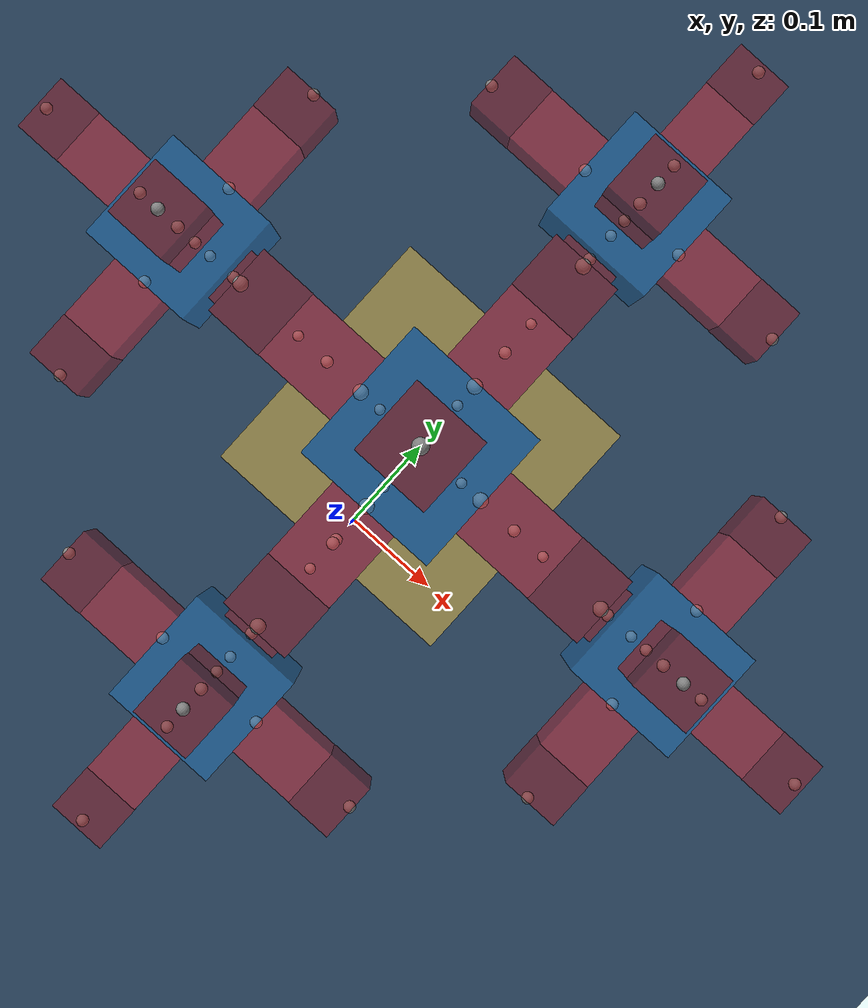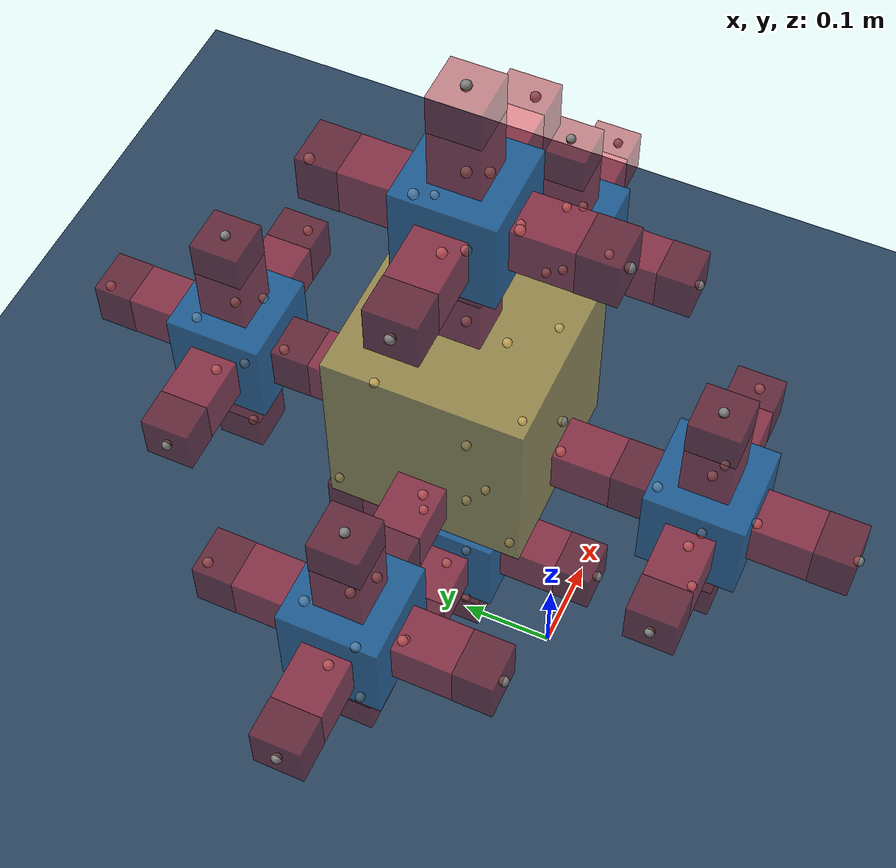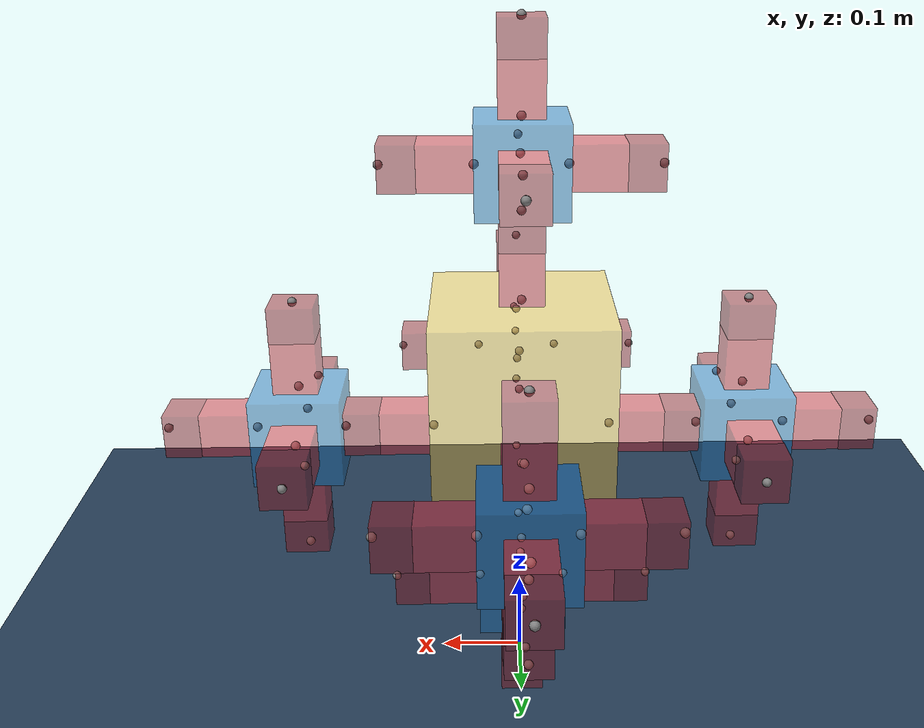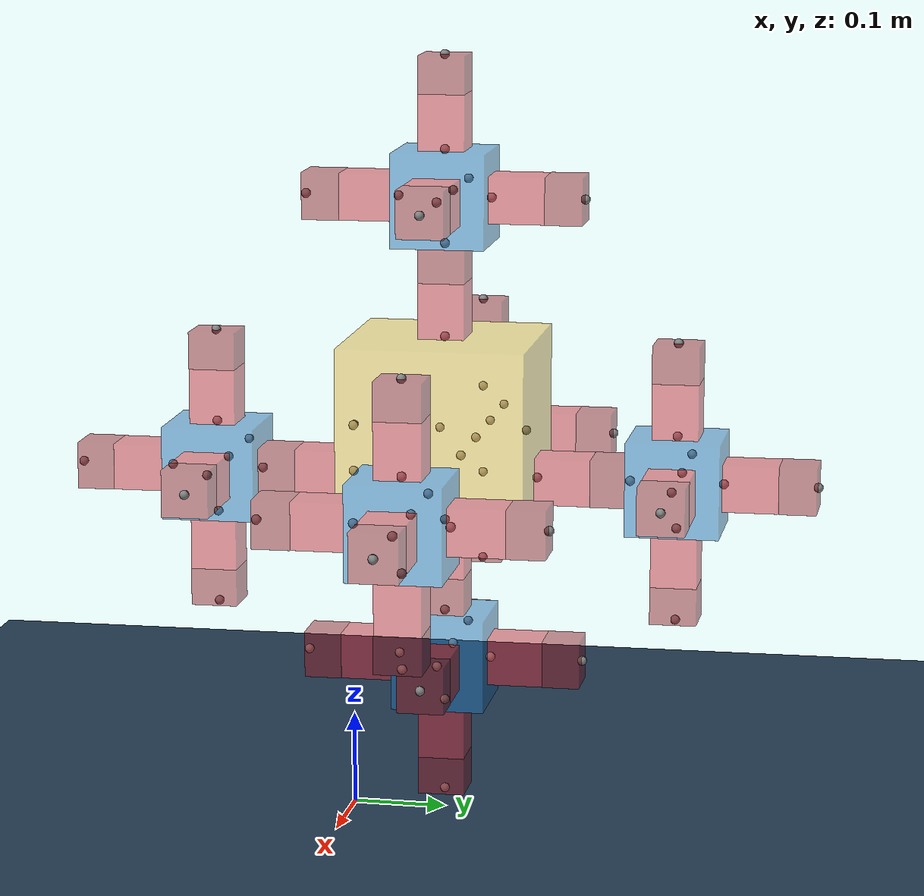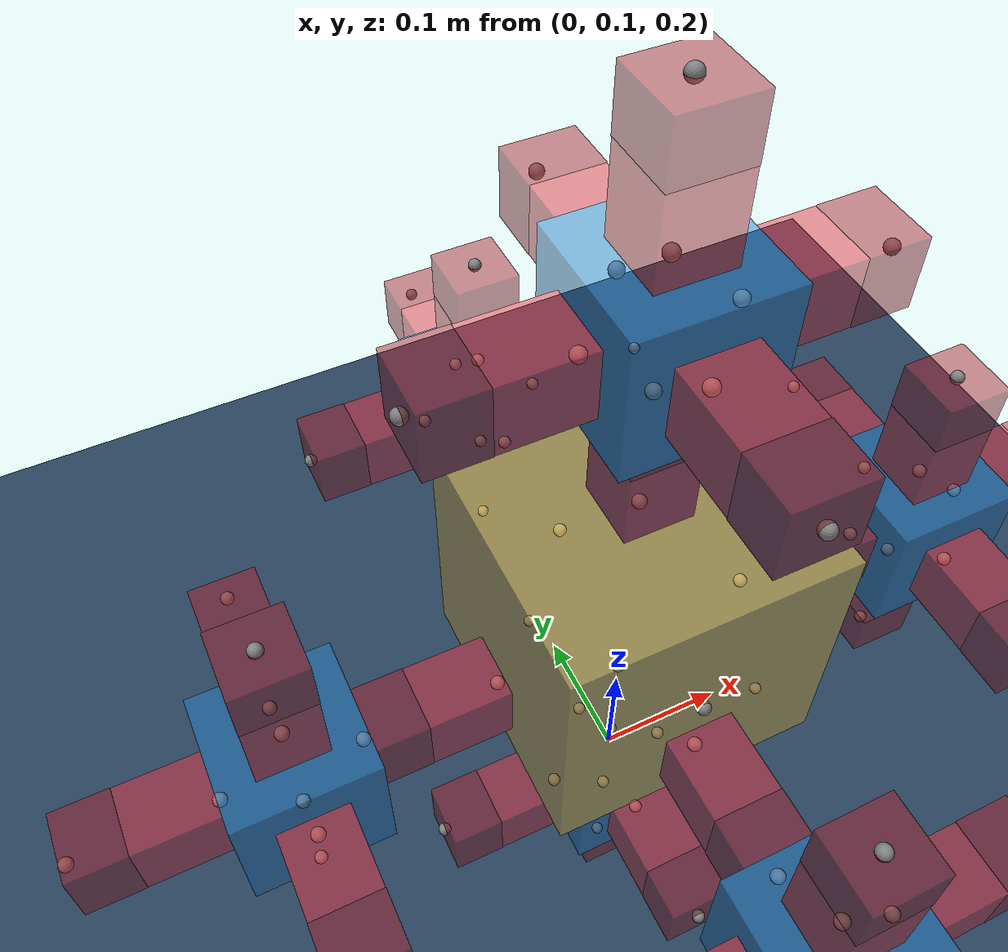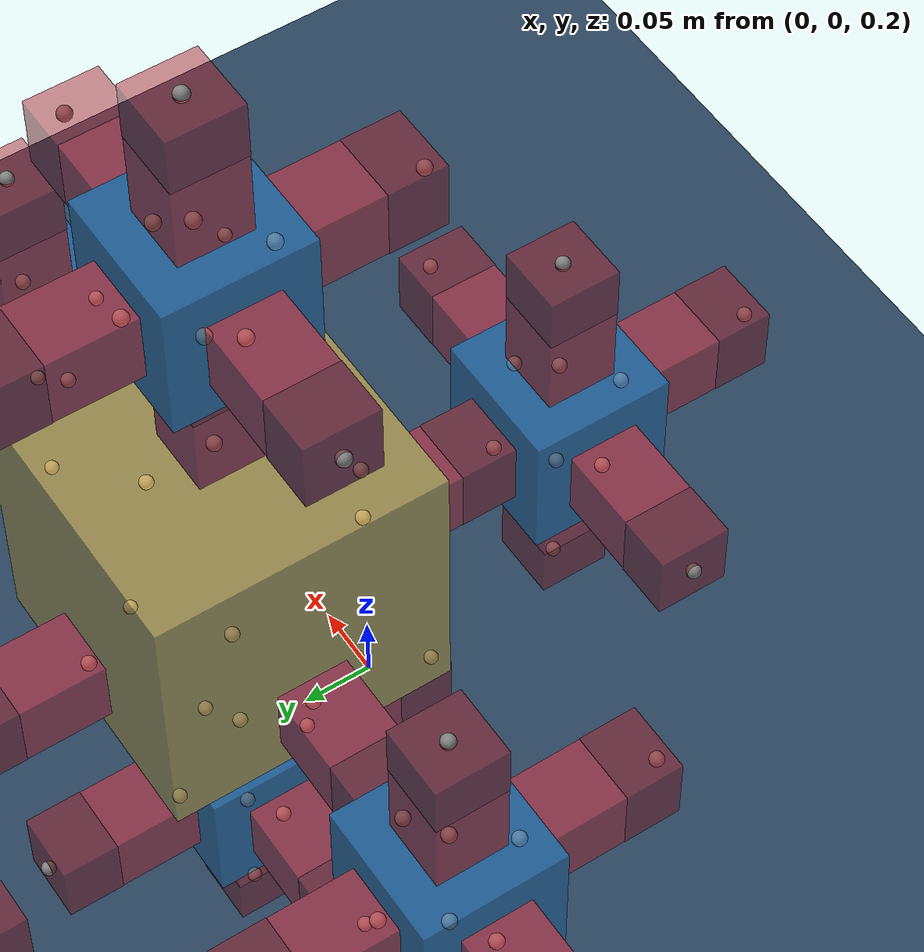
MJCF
<mujoco model="MuJoCo Model">
  <compiler angle="radian"/>

  <option integrator="implicitfast"/>

  <visual>
    <global offwidth="1280" offheight="960"/>
  </visual>

  <default>
    <default class="robot-main">
      <default class="robot-1-0-main"/>
      <default class="robot-2-0-main"/>
      <default class="robot-3-0-main"/>
      <default class="robot-4-2-main"/>
      <default class="robot-5-3-main"/>
      <default class="robot-6-4-main"/>
      <default class="robot-7-5-main"/>
      <default class="robot-8-1-main"/>
      <default class="robot-9-1-main"/>
      <default class="robot-10-0-main"/>
      <default class="robot-11-2-main"/>
      <default class="robot-12-3-main"/>
      <default class="robot-13-4-main"/>
      <default class="robot-14-5-main"/>
      <default class="robot-15-2-main"/>
      <default class="robot-16-2-main"/>
      <default class="robot-17-0-main"/>
      <default class="robot-18-2-main"/>
      <default class="robot-19-3-main"/>
      <default class="robot-20-4-main"/>
      <default class="robot-21-5-main"/>
      <default class="robot-22-3-main"/>
      <default class="robot-23-3-main"/>
      <default class="robot-24-0-main"/>
      <default class="robot-25-2-main"/>
      <default class="robot-26-3-main"/>
      <default class="robot-27-4-main"/>
      <default class="robot-28-5-main"/>
      <default class="robot-29-4-main"/>
      <default class="robot-30-4-main"/>
      <default class="robot-31-0-main"/>
      <default class="robot-32-2-main"/>
      <default class="robot-33-3-main"/>
      <default class="robot-34-4-main"/>
      <default class="robot-35-5-main"/>
      <default class="robot-36-5-main"/>
      <default class="robot-37-5-main"/>
      <default class="robot-38-0-main"/>
      <default class="robot-39-2-main"/>
      <default class="robot-40-3-main"/>
      <default class="robot-41-4-main"/>
      <default class="robot-42-5-main"/>
    </default>
  </default>

  <asset>
    <texture type="2d" colorspace="auto" name="grid" builtin="checker" rgb1="0.1 0.2 0.3" rgb2="0.2 0.3 0.4" width="600" height="600"/>
    <material name="grid" texture="grid" texuniform="true" texrepeat="3 3" reflectance="0.2"/>
  </asset>

  <worldbody>
    <geom name="floor" size="1 1 0.1" type="plane" material="grid"/>
    <site pos="0 0 0.42062"/>
    <light name="light" pos="0 0 1" dir="0 0 -1" castshadow="false"/>
    <body name="robot-world" pos="0 0 0.42062">
      <joint type="free"/>
      <body name="robot-core">
        <geom name="robot-core" size="0.1 0.1 0.1" pos="0 0.1 0" type="box" mass="1" rgba="0.992157 0.792157 0.25098 0.5"/>
        <site name="robot-core-front" pos="0 0.2 -0.05"/>
        <site name="robot-core-back" pos="0 0 -0.05" quat="0 0 0 1"/>
        <site name="robot-core-left" pos="-0.1 0.1 -0.05" quat="0.707107 0 0 0.707107"/>
        <site name="robot-core-right" pos="0.1 0.1 -0.05" quat="-0.707107 0 0 0.707107"/>
        <site name="robot-core-top" pos="0 0.1 0.1" quat="0.707107 0.707107 0 0"/>
        <site name="robot-core-bottom" pos="0 0.1 -0.1" quat="0 0 -0.707107 0.707107"/>
        <body name="robot-1-0-hinge" pos="0 0.2 -0.05">
          <body name="robot-1-0-stator" pos="0 0.03 0">
            <geom name="robot-1-0-stator" size="0.02475 0.0297 0.02475" type="box" mass="0.02" rgba="0.87451 0.160784 0.207843 0.5"/>
          </body>
          <body name="robot-1-0-rotor" pos="0 0.08 0">
            <joint name="robot-1-0-servo" pos="0 -0.02 0" axis="0 0 1"/>
            <geom name="robot-1-0-rotor" size="0.025 0.02 0.025" type="box" mass="0.04" rgba="0.627451 0.0941176 0.129412 0.5"/>
            <site name="robot-1-0-hinge-front" pos="0 0.02 0"/>
            <body name="robot-2-0-core" pos="0 0.02 0">
              <geom name="robot-2-0-core" size="0.05 0.05 0.05" pos="0 0.05 0" type="box" mass="0.055" rgba="0.109804 0.466667 0.764706 0.5"/>
              <site name="robot-2-0-core-front" pos="0 0.1 0"/>
              <site name="robot-2-0-core-left" pos="-0.05 0.05 0" quat="0.707107 0 0 0.707107"/>
              <site name="robot-2-0-core-right" pos="0.05 0.05 0" quat="-0.707107 0 0 0.707107"/>
              <site name="robot-2-0-core-top" pos="0 0.05 0.05" quat="0.707107 0.707107 0 0"/>
              <site name="robot-2-0-core-bottom" pos="0 0.05 -0.05" quat="0 0 -0.707107 0.707107"/>
              <body name="robot-3-0-hinge" pos="0 0.1 0">
                <body name="robot-3-0-stator" pos="0 0.03 0">
                  <geom name="robot-3-0-stator" size="0.02475 0.0297 0.02475" type="box" mass="0.02" rgba="0.87451 0.160784 0.207843 0.5"/>
                </body>
                <body name="robot-3-0-rotor" pos="0 0.08 0">
                  <joint name="robot-3-0-servo" pos="0 -0.02 0" axis="0 0 1"/>
                  <geom name="robot-3-0-rotor" size="0.025 0.02 0.025" type="box" mass="0.04" rgba="0.627451 0.0941176 0.129412 0.5"/>
                  <site name="robot-3-0-hinge-front" pos="0 0.02 0"/>
                </body>
              </body>
              <body name="robot-4-2-hinge" pos="0.05 0.05 0" quat="-0.707107 0 0 0.707107">
                <body name="robot-4-2-stator" pos="0 0.03 0">
                  <geom name="robot-4-2-stator" size="0.02475 0.0297 0.02475" type="box" mass="0.02" rgba="0.87451 0.160784 0.207843 0.5"/>
                </body>
                <body name="robot-4-2-rotor" pos="0 0.08 0">
                  <joint name="robot-4-2-servo" pos="0 -0.02 0" axis="0 0 1"/>
                  <geom name="robot-4-2-rotor" size="0.025 0.02 0.025" type="box" mass="0.04" rgba="0.627451 0.0941176 0.129412 0.5"/>
                  <site name="robot-4-2-hinge-front" pos="0 0.02 0"/>
                </body>
              </body>
              <body name="robot-5-3-hinge" pos="-0.05 0.05 0" quat="0.707107 0 0 0.707107">
                <body name="robot-5-3-stator" pos="0 0.03 0">
                  <geom name="robot-5-3-stator" size="0.02475 0.0297 0.02475" type="box" mass="0.02" rgba="0.87451 0.160784 0.207843 0.5"/>
                </body>
                <body name="robot-5-3-rotor" pos="0 0.08 0">
                  <joint name="robot-5-3-servo" pos="0 -0.02 0" axis="0 0 1"/>
                  <geom name="robot-5-3-rotor" size="0.025 0.02 0.025" type="box" mass="0.04" rgba="0.627451 0.0941176 0.129412 0.5"/>
                  <site name="robot-5-3-hinge-front" pos="0 0.02 0"/>
                </body>
              </body>
              <body name="robot-6-4-hinge" pos="0 0.05 0.05" quat="0.707107 0.707107 0 0">
                <body name="robot-6-4-stator" pos="0 0.03 0">
                  <geom name="robot-6-4-stator" size="0.02475 0.0297 0.02475" type="box" mass="0.02" rgba="0.87451 0.160784 0.207843 0.5"/>
                </body>
                <body name="robot-6-4-rotor" pos="0 0.08 0">
                  <joint name="robot-6-4-servo" pos="0 -0.02 0" axis="0 0 1"/>
                  <geom name="robot-6-4-rotor" size="0.025 0.02 0.025" type="box" mass="0.04" rgba="0.627451 0.0941176 0.129412 0.5"/>
                  <site name="robot-6-4-hinge-front" pos="0 0.02 0"/>
                </body>
              </body>
              <body name="robot-7-5-hinge" pos="0 0.05 -0.05" quat="0 0 -0.707107 0.707107">
                <body name="robot-7-5-stator" pos="0 0.03 0">
                  <geom name="robot-7-5-stator" size="0.02475 0.0297 0.02475" type="box" mass="0.02" rgba="0.87451 0.160784 0.207843 0.5"/>
                </body>
                <body name="robot-7-5-rotor" pos="0 0.08 0">
                  <joint name="robot-7-5-servo" pos="0 -0.02 0" axis="0 0 1"/>
                  <geom name="robot-7-5-rotor" size="0.025 0.02 0.025" type="box" mass="0.04" rgba="0.627451 0.0941176 0.129412 0.5"/>
                  <site name="robot-7-5-hinge-front" pos="0 0.02 0"/>
                </body>
              </body>
            </body>
          </body>
        </body>
        <body name="robot-8-1-hinge" pos="0 0 -0.05" quat="0 0 0 1">
          <body name="robot-8-1-stator" pos="0 0.03 0">
            <geom name="robot-8-1-stator" size="0.02475 0.0297 0.02475" type="box" mass="0.02" rgba="0.87451 0.160784 0.207843 0.5"/>
          </body>
          <body name="robot-8-1-rotor" pos="0 0.08 0">
            <joint name="robot-8-1-servo" pos="0 -0.02 0" axis="0 0 1"/>
            <geom name="robot-8-1-rotor" size="0.025 0.02 0.025" type="box" mass="0.04" rgba="0.627451 0.0941176 0.129412 0.5"/>
            <site name="robot-8-1-hinge-front" pos="0 0.02 0"/>
            <body name="robot-9-1-core" pos="0 0.02 0">
              <geom name="robot-9-1-core" size="0.05 0.05 0.05" pos="0 0.05 0" type="box" mass="0.055" rgba="0.109804 0.466667 0.764706 0.5"/>
              <site name="robot-9-1-core-front" pos="0 0.1 0"/>
              <site name="robot-9-1-core-left" pos="-0.05 0.05 0" quat="0.707107 0 0 0.707107"/>
              <site name="robot-9-1-core-right" pos="0.05 0.05 0" quat="-0.707107 0 0 0.707107"/>
              <site name="robot-9-1-core-top" pos="0 0.05 0.05" quat="0.707107 0.707107 0 0"/>
              <site name="robot-9-1-core-bottom" pos="0 0.05 -0.05" quat="0 0 -0.707107 0.707107"/>
              <body name="robot-10-0-hinge" pos="0 0.1 0">
                <body name="robot-10-0-stator" pos="0 0.03 0">
                  <geom name="robot-10-0-stator" size="0.02475 0.0297 0.02475" type="box" mass="0.02" rgba="0.87451 0.160784 0.207843 0.5"/>
                </body>
                <body name="robot-10-0-rotor" pos="0 0.08 0">
                  <joint name="robot-10-0-servo" pos="0 -0.02 0" axis="0 0 1"/>
                  <geom name="robot-10-0-rotor" size="0.025 0.02 0.025" type="box" mass="0.04" rgba="0.627451 0.0941176 0.129412 0.5"/>
                  <site name="robot-10-0-hinge-front" pos="0 0.02 0"/>
                </body>
              </body>
              <body name="robot-11-2-hinge" pos="0.05 0.05 0" quat="-0.707107 0 0 0.707107">
                <body name="robot-11-2-stator" pos="0 0.03 0">
                  <geom name="robot-11-2-stator" size="0.02475 0.0297 0.02475" type="box" mass="0.02" rgba="0.87451 0.160784 0.207843 0.5"/>
                </body>
                <body name="robot-11-2-rotor" pos="0 0.08 0">
                  <joint name="robot-11-2-servo" pos="0 -0.02 0" axis="0 0 1"/>
                  <geom name="robot-11-2-rotor" size="0.025 0.02 0.025" type="box" mass="0.04" rgba="0.627451 0.0941176 0.129412 0.5"/>
                  <site name="robot-11-2-hinge-front" pos="0 0.02 0"/>
                </body>
              </body>
              <body name="robot-12-3-hinge" pos="-0.05 0.05 0" quat="0.707107 0 0 0.707107">
                <body name="robot-12-3-stator" pos="0 0.03 0">
                  <geom name="robot-12-3-stator" size="0.02475 0.0297 0.02475" type="box" mass="0.02" rgba="0.87451 0.160784 0.207843 0.5"/>
                </body>
                <body name="robot-12-3-rotor" pos="0 0.08 0">
                  <joint name="robot-12-3-servo" pos="0 -0.02 0" axis="0 0 1"/>
                  <geom name="robot-12-3-rotor" size="0.025 0.02 0.025" type="box" mass="0.04" rgba="0.627451 0.0941176 0.129412 0.5"/>
                  <site name="robot-12-3-hinge-front" pos="0 0.02 0"/>
                </body>
              </body>
              <body name="robot-13-4-hinge" pos="0 0.05 0.05" quat="0.707107 0.707107 0 0">
                <body name="robot-13-4-stator" pos="0 0.03 0">
                  <geom name="robot-13-4-stator" size="0.02475 0.0297 0.02475" type="box" mass="0.02" rgba="0.87451 0.160784 0.207843 0.5"/>
                </body>
                <body name="robot-13-4-rotor" pos="0 0.08 0">
                  <joint name="robot-13-4-servo" pos="0 -0.02 0" axis="0 0 1"/>
                  <geom name="robot-13-4-rotor" size="0.025 0.02 0.025" type="box" mass="0.04" rgba="0.627451 0.0941176 0.129412 0.5"/>
                  <site name="robot-13-4-hinge-front" pos="0 0.02 0"/>
                </body>
              </body>
              <body name="robot-14-5-hinge" pos="0 0.05 -0.05" quat="0 0 -0.707107 0.707107">
                <body name="robot-14-5-stator" pos="0 0.03 0">
                  <geom name="robot-14-5-stator" size="0.02475 0.0297 0.02475" type="box" mass="0.02" rgba="0.87451 0.160784 0.207843 0.5"/>
                </body>
                <body name="robot-14-5-rotor" pos="0 0.08 0">
                  <joint name="robot-14-5-servo" pos="0 -0.02 0" axis="0 0 1"/>
                  <geom name="robot-14-5-rotor" size="0.025 0.02 0.025" type="box" mass="0.04" rgba="0.627451 0.0941176 0.129412 0.5"/>
                  <site name="robot-14-5-hinge-front" pos="0 0.02 0"/>
                </body>
              </body>
            </body>
          </body>
        </body>
        <body name="robot-15-2-hinge" pos="0.1 0.1 -0.05" quat="-0.707107 0 0 0.707107">
          <body name="robot-15-2-stator" pos="0 0.03 0">
            <geom name="robot-15-2-stator" size="0.02475 0.0297 0.02475" type="box" mass="0.02" rgba="0.87451 0.160784 0.207843 0.5"/>
          </body>
          <body name="robot-15-2-rotor" pos="0 0.08 0">
            <joint name="robot-15-2-servo" pos="0 -0.02 0" axis="0 0 1"/>
            <geom name="robot-15-2-rotor" size="0.025 0.02 0.025" type="box" mass="0.04" rgba="0.627451 0.0941176 0.129412 0.5"/>
            <site name="robot-15-2-hinge-front" pos="0 0.02 0"/>
            <body name="robot-16-2-core" pos="0 0.02 0">
              <geom name="robot-16-2-core" size="0.05 0.05 0.05" pos="0 0.05 0" type="box" mass="0.055" rgba="0.109804 0.466667 0.764706 0.5"/>
              <site name="robot-16-2-core-front" pos="0 0.1 0"/>
              <site name="robot-16-2-core-left" pos="-0.05 0.05 0" quat="0.707107 0 0 0.707107"/>
              <site name="robot-16-2-core-right" pos="0.05 0.05 0" quat="-0.707107 0 0 0.707107"/>
              <site name="robot-16-2-core-top" pos="0 0.05 0.05" quat="0.707107 0.707107 0 0"/>
              <site name="robot-16-2-core-bottom" pos="0 0.05 -0.05" quat="0 0 -0.707107 0.707107"/>
              <body name="robot-17-0-hinge" pos="0 0.1 0">
                <body name="robot-17-0-stator" pos="0 0.03 0">
                  <geom name="robot-17-0-stator" size="0.02475 0.0297 0.02475" type="box" mass="0.02" rgba="0.87451 0.160784 0.207843 0.5"/>
                </body>
                <body name="robot-17-0-rotor" pos="0 0.08 0">
                  <joint name="robot-17-0-servo" pos="0 -0.02 0" axis="0 0 1"/>
                  <geom name="robot-17-0-rotor" size="0.025 0.02 0.025" type="box" mass="0.04" rgba="0.627451 0.0941176 0.129412 0.5"/>
                  <site name="robot-17-0-hinge-front" pos="0 0.02 0"/>
                </body>
              </body>
              <body name="robot-18-2-hinge" pos="0.05 0.05 0" quat="-0.707107 0 0 0.707107">
                <body name="robot-18-2-stator" pos="0 0.03 0">
                  <geom name="robot-18-2-stator" size="0.02475 0.0297 0.02475" type="box" mass="0.02" rgba="0.87451 0.160784 0.207843 0.5"/>
                </body>
                <body name="robot-18-2-rotor" pos="0 0.08 0">
                  <joint name="robot-18-2-servo" pos="0 -0.02 0" axis="0 0 1"/>
                  <geom name="robot-18-2-rotor" size="0.025 0.02 0.025" type="box" mass="0.04" rgba="0.627451 0.0941176 0.129412 0.5"/>
                  <site name="robot-18-2-hinge-front" pos="0 0.02 0"/>
                </body>
              </body>
              <body name="robot-19-3-hinge" pos="-0.05 0.05 0" quat="0.707107 0 0 0.707107">
                <body name="robot-19-3-stator" pos="0 0.03 0">
                  <geom name="robot-19-3-stator" size="0.02475 0.0297 0.02475" type="box" mass="0.02" rgba="0.87451 0.160784 0.207843 0.5"/>
                </body>
                <body name="robot-19-3-rotor" pos="0 0.08 0">
                  <joint name="robot-19-3-servo" pos="0 -0.02 0" axis="0 0 1"/>
                  <geom name="robot-19-3-rotor" size="0.025 0.02 0.025" type="box" mass="0.04" rgba="0.627451 0.0941176 0.129412 0.5"/>
                  <site name="robot-19-3-hinge-front" pos="0 0.02 0"/>
                </body>
              </body>
              <body name="robot-20-4-hinge" pos="0 0.05 0.05" quat="0.707107 0.707107 0 0">
                <body name="robot-20-4-stator" pos="0 0.03 0">
                  <geom name="robot-20-4-stator" size="0.02475 0.0297 0.02475" type="box" mass="0.02" rgba="0.87451 0.160784 0.207843 0.5"/>
                </body>
                <body name="robot-20-4-rotor" pos="0 0.08 0">
                  <joint name="robot-20-4-servo" pos="0 -0.02 0" axis="0 0 1"/>
                  <geom name="robot-20-4-rotor" size="0.025 0.02 0.025" type="box" mass="0.04" rgba="0.627451 0.0941176 0.129412 0.5"/>
                  <site name="robot-20-4-hinge-front" pos="0 0.02 0"/>
                </body>
              </body>
              <body name="robot-21-5-hinge" pos="0 0.05 -0.05" quat="0 0 -0.707107 0.707107">
                <body name="robot-21-5-stator" pos="0 0.03 0">
                  <geom name="robot-21-5-stator" size="0.02475 0.0297 0.02475" type="box" mass="0.02" rgba="0.87451 0.160784 0.207843 0.5"/>
                </body>
                <body name="robot-21-5-rotor" pos="0 0.08 0">
                  <joint name="robot-21-5-servo" pos="0 -0.02 0" axis="0 0 1"/>
                  <geom name="robot-21-5-rotor" size="0.025 0.02 0.025" type="box" mass="0.04" rgba="0.627451 0.0941176 0.129412 0.5"/>
                  <site name="robot-21-5-hinge-front" pos="0 0.02 0"/>
                </body>
              </body>
            </body>
          </body>
        </body>
        <body name="robot-22-3-hinge" pos="-0.1 0.1 -0.05" quat="0.707107 0 0 0.707107">
          <body name="robot-22-3-stator" pos="0 0.03 0">
            <geom name="robot-22-3-stator" size="0.02475 0.0297 0.02475" type="box" mass="0.02" rgba="0.87451 0.160784 0.207843 0.5"/>
          </body>
          <body name="robot-22-3-rotor" pos="0 0.08 0">
            <joint name="robot-22-3-servo" pos="0 -0.02 0" axis="0 0 1"/>
            <geom name="robot-22-3-rotor" size="0.025 0.02 0.025" type="box" mass="0.04" rgba="0.627451 0.0941176 0.129412 0.5"/>
            <site name="robot-22-3-hinge-front" pos="0 0.02 0"/>
            <body name="robot-23-3-core" pos="0 0.02 0">
              <geom name="robot-23-3-core" size="0.05 0.05 0.05" pos="0 0.05 0" type="box" mass="0.055" rgba="0.109804 0.466667 0.764706 0.5"/>
              <site name="robot-23-3-core-front" pos="0 0.1 0"/>
              <site name="robot-23-3-core-left" pos="-0.05 0.05 0" quat="0.707107 0 0 0.707107"/>
              <site name="robot-23-3-core-right" pos="0.05 0.05 0" quat="-0.707107 0 0 0.707107"/>
              <site name="robot-23-3-core-top" pos="0 0.05 0.05" quat="0.707107 0.707107 0 0"/>
              <site name="robot-23-3-core-bottom" pos="0 0.05 -0.05" quat="0 0 -0.707107 0.707107"/>
              <body name="robot-24-0-hinge" pos="0 0.1 0">
                <body name="robot-24-0-stator" pos="0 0.03 0">
                  <geom name="robot-24-0-stator" size="0.02475 0.0297 0.02475" type="box" mass="0.02" rgba="0.87451 0.160784 0.207843 0.5"/>
                </body>
                <body name="robot-24-0-rotor" pos="0 0.08 0">
                  <joint name="robot-24-0-servo" pos="0 -0.02 0" axis="0 0 1"/>
                  <geom name="robot-24-0-rotor" size="0.025 0.02 0.025" type="box" mass="0.04" rgba="0.627451 0.0941176 0.129412 0.5"/>
                  <site name="robot-24-0-hinge-front" pos="0 0.02 0"/>
                </body>
              </body>
              <body name="robot-25-2-hinge" pos="0.05 0.05 0" quat="-0.707107 0 0 0.707107">
                <body name="robot-25-2-stator" pos="0 0.03 0">
                  <geom name="robot-25-2-stator" size="0.02475 0.0297 0.02475" type="box" mass="0.02" rgba="0.87451 0.160784 0.207843 0.5"/>
                </body>
                <body name="robot-25-2-rotor" pos="0 0.08 0">
                  <joint name="robot-25-2-servo" pos="0 -0.02 0" axis="0 0 1"/>
                  <geom name="robot-25-2-rotor" size="0.025 0.02 0.025" type="box" mass="0.04" rgba="0.627451 0.0941176 0.129412 0.5"/>
                  <site name="robot-25-2-hinge-front" pos="0 0.02 0"/>
                </body>
              </body>
              <body name="robot-26-3-hinge" pos="-0.05 0.05 0" quat="0.707107 0 0 0.707107">
                <body name="robot-26-3-stator" pos="0 0.03 0">
                  <geom name="robot-26-3-stator" size="0.02475 0.0297 0.02475" type="box" mass="0.02" rgba="0.87451 0.160784 0.207843 0.5"/>
                </body>
                <body name="robot-26-3-rotor" pos="0 0.08 0">
                  <joint name="robot-26-3-servo" pos="0 -0.02 0" axis="0 0 1"/>
                  <geom name="robot-26-3-rotor" size="0.025 0.02 0.025" type="box" mass="0.04" rgba="0.627451 0.0941176 0.129412 0.5"/>
                  <site name="robot-26-3-hinge-front" pos="0 0.02 0"/>
                </body>
              </body>
              <body name="robot-27-4-hinge" pos="0 0.05 0.05" quat="0.707107 0.707107 0 0">
                <body name="robot-27-4-stator" pos="0 0.03 0">
                  <geom name="robot-27-4-stator" size="0.02475 0.0297 0.02475" type="box" mass="0.02" rgba="0.87451 0.160784 0.207843 0.5"/>
                </body>
                <body name="robot-27-4-rotor" pos="0 0.08 0">
                  <joint name="robot-27-4-servo" pos="0 -0.02 0" axis="0 0 1"/>
                  <geom name="robot-27-4-rotor" size="0.025 0.02 0.025" type="box" mass="0.04" rgba="0.627451 0.0941176 0.129412 0.5"/>
                  <site name="robot-27-4-hinge-front" pos="0 0.02 0"/>
                </body>
              </body>
              <body name="robot-28-5-hinge" pos="0 0.05 -0.05" quat="0 0 -0.707107 0.707107">
                <body name="robot-28-5-stator" pos="0 0.03 0">
                  <geom name="robot-28-5-stator" size="0.02475 0.0297 0.02475" type="box" mass="0.02" rgba="0.87451 0.160784 0.207843 0.5"/>
                </body>
                <body name="robot-28-5-rotor" pos="0 0.08 0">
                  <joint name="robot-28-5-servo" pos="0 -0.02 0" axis="0 0 1"/>
                  <geom name="robot-28-5-rotor" size="0.025 0.02 0.025" type="box" mass="0.04" rgba="0.627451 0.0941176 0.129412 0.5"/>
                  <site name="robot-28-5-hinge-front" pos="0 0.02 0"/>
                </body>
              </body>
            </body>
          </body>
        </body>
        <body name="robot-29-4-hinge" pos="0 0.1 0.1" quat="0.707107 0.707107 0 0">
          <body name="robot-29-4-stator" pos="0 0.03 0">
            <geom name="robot-29-4-stator" size="0.02475 0.0297 0.02475" type="box" mass="0.02" rgba="0.87451 0.160784 0.207843 0.5"/>
          </body>
          <body name="robot-29-4-rotor" pos="0 0.08 0">
            <joint name="robot-29-4-servo" pos="0 -0.02 0" axis="0 0 1"/>
            <geom name="robot-29-4-rotor" size="0.025 0.02 0.025" type="box" mass="0.04" rgba="0.627451 0.0941176 0.129412 0.5"/>
            <site name="robot-29-4-hinge-front" pos="0 0.02 0"/>
            <body name="robot-30-4-core" pos="0 0.02 0">
              <geom name="robot-30-4-core" size="0.05 0.05 0.05" pos="0 0.05 0" type="box" mass="0.055" rgba="0.109804 0.466667 0.764706 0.5"/>
              <site name="robot-30-4-core-front" pos="0 0.1 0"/>
              <site name="robot-30-4-core-left" pos="-0.05 0.05 0" quat="0.707107 0 0 0.707107"/>
              <site name="robot-30-4-core-right" pos="0.05 0.05 0" quat="-0.707107 0 0 0.707107"/>
              <site name="robot-30-4-core-top" pos="0 0.05 0.05" quat="0.707107 0.707107 0 0"/>
              <site name="robot-30-4-core-bottom" pos="0 0.05 -0.05" quat="0 0 -0.707107 0.707107"/>
              <body name="robot-31-0-hinge" pos="0 0.1 0">
                <body name="robot-31-0-stator" pos="0 0.03 0">
                  <geom name="robot-31-0-stator" size="0.02475 0.0297 0.02475" type="box" mass="0.02" rgba="0.87451 0.160784 0.207843 0.5"/>
                </body>
                <body name="robot-31-0-rotor" pos="0 0.08 0">
                  <joint name="robot-31-0-servo" pos="0 -0.02 0" axis="0 0 1"/>
                  <geom name="robot-31-0-rotor" size="0.025 0.02 0.025" type="box" mass="0.04" rgba="0.627451 0.0941176 0.129412 0.5"/>
                  <site name="robot-31-0-hinge-front" pos="0 0.02 0"/>
                </body>
              </body>
              <body name="robot-32-2-hinge" pos="0.05 0.05 0" quat="-0.707107 0 0 0.707107">
                <body name="robot-32-2-stator" pos="0 0.03 0">
                  <geom name="robot-32-2-stator" size="0.02475 0.0297 0.02475" type="box" mass="0.02" rgba="0.87451 0.160784 0.207843 0.5"/>
                </body>
                <body name="robot-32-2-rotor" pos="0 0.08 0">
                  <joint name="robot-32-2-servo" pos="0 -0.02 0" axis="0 0 1"/>
                  <geom name="robot-32-2-rotor" size="0.025 0.02 0.025" type="box" mass="0.04" rgba="0.627451 0.0941176 0.129412 0.5"/>
                  <site name="robot-32-2-hinge-front" pos="0 0.02 0"/>
                </body>
              </body>
              <body name="robot-33-3-hinge" pos="-0.05 0.05 0" quat="0.707107 0 0 0.707107">
                <body name="robot-33-3-stator" pos="0 0.03 0">
                  <geom name="robot-33-3-stator" size="0.02475 0.0297 0.02475" type="box" mass="0.02" rgba="0.87451 0.160784 0.207843 0.5"/>
                </body>
                <body name="robot-33-3-rotor" pos="0 0.08 0">
                  <joint name="robot-33-3-servo" pos="0 -0.02 0" axis="0 0 1"/>
                  <geom name="robot-33-3-rotor" size="0.025 0.02 0.025" type="box" mass="0.04" rgba="0.627451 0.0941176 0.129412 0.5"/>
                  <site name="robot-33-3-hinge-front" pos="0 0.02 0"/>
                </body>
              </body>
              <body name="robot-34-4-hinge" pos="0 0.05 0.05" quat="0.707107 0.707107 0 0">
                <body name="robot-34-4-stator" pos="0 0.03 0">
                  <geom name="robot-34-4-stator" size="0.02475 0.0297 0.02475" type="box" mass="0.02" rgba="0.87451 0.160784 0.207843 0.5"/>
                </body>
                <body name="robot-34-4-rotor" pos="0 0.08 0">
                  <joint name="robot-34-4-servo" pos="0 -0.02 0" axis="0 0 1"/>
                  <geom name="robot-34-4-rotor" size="0.025 0.02 0.025" type="box" mass="0.04" rgba="0.627451 0.0941176 0.129412 0.5"/>
                  <site name="robot-34-4-hinge-front" pos="0 0.02 0"/>
                </body>
              </body>
              <body name="robot-35-5-hinge" pos="0 0.05 -0.05" quat="0 0 -0.707107 0.707107">
                <body name="robot-35-5-stator" pos="0 0.03 0">
                  <geom name="robot-35-5-stator" size="0.02475 0.0297 0.02475" type="box" mass="0.02" rgba="0.87451 0.160784 0.207843 0.5"/>
                </body>
                <body name="robot-35-5-rotor" pos="0 0.08 0">
                  <joint name="robot-35-5-servo" pos="0 -0.02 0" axis="0 0 1"/>
                  <geom name="robot-35-5-rotor" size="0.025 0.02 0.025" type="box" mass="0.04" rgba="0.627451 0.0941176 0.129412 0.5"/>
                  <site name="robot-35-5-hinge-front" pos="0 0.02 0"/>
                </body>
              </body>
            </body>
          </body>
        </body>
        <body name="robot-36-5-hinge" pos="0 0.1 -0.1" quat="0 0 -0.707107 0.707107">
          <body name="robot-36-5-stator" pos="0 0.03 0">
            <geom name="robot-36-5-stator" size="0.02475 0.0297 0.02475" type="box" mass="0.02" rgba="0.87451 0.160784 0.207843 0.5"/>
          </body>
          <body name="robot-36-5-rotor" pos="0 0.08 0">
            <joint name="robot-36-5-servo" pos="0 -0.02 0" axis="0 0 1"/>
            <geom name="robot-36-5-rotor" size="0.025 0.02 0.025" type="box" mass="0.04" rgba="0.627451 0.0941176 0.129412 0.5"/>
            <site name="robot-36-5-hinge-front" pos="0 0.02 0"/>
            <body name="robot-37-5-core" pos="0 0.02 0">
              <geom name="robot-37-5-core" size="0.05 0.05 0.05" pos="0 0.05 0" type="box" mass="0.055" rgba="0.109804 0.466667 0.764706 0.5"/>
              <site name="robot-37-5-core-front" pos="0 0.1 0"/>
              <site name="robot-37-5-core-left" pos="-0.05 0.05 0" quat="0.707107 0 0 0.707107"/>
              <site name="robot-37-5-core-right" pos="0.05 0.05 0" quat="-0.707107 0 0 0.707107"/>
              <site name="robot-37-5-core-top" pos="0 0.05 0.05" quat="0.707107 0.707107 0 0"/>
              <site name="robot-37-5-core-bottom" pos="0 0.05 -0.05" quat="0 0 -0.707107 0.707107"/>
              <body name="robot-38-0-hinge" pos="0 0.1 0">
                <body name="robot-38-0-stator" pos="0 0.03 0">
                  <geom name="robot-38-0-stator" size="0.02475 0.0297 0.02475" type="box" mass="0.02" rgba="0.87451 0.160784 0.207843 0.5"/>
                </body>
                <body name="robot-38-0-rotor" pos="0 0.08 0">
                  <joint name="robot-38-0-servo" pos="0 -0.02 0" axis="0 0 1"/>
                  <geom name="robot-38-0-rotor" size="0.025 0.02 0.025" type="box" mass="0.04" rgba="0.627451 0.0941176 0.129412 0.5"/>
                  <site name="robot-38-0-hinge-front" pos="0 0.02 0"/>
                </body>
              </body>
              <body name="robot-39-2-hinge" pos="0.05 0.05 0" quat="-0.707107 0 0 0.707107">
                <body name="robot-39-2-stator" pos="0 0.03 0">
                  <geom name="robot-39-2-stator" size="0.02475 0.0297 0.02475" type="box" mass="0.02" rgba="0.87451 0.160784 0.207843 0.5"/>
                </body>
                <body name="robot-39-2-rotor" pos="0 0.08 0">
                  <joint name="robot-39-2-servo" pos="0 -0.02 0" axis="0 0 1"/>
                  <geom name="robot-39-2-rotor" size="0.025 0.02 0.025" type="box" mass="0.04" rgba="0.627451 0.0941176 0.129412 0.5"/>
                  <site name="robot-39-2-hinge-front" pos="0 0.02 0"/>
                </body>
              </body>
              <body name="robot-40-3-hinge" pos="-0.05 0.05 0" quat="0.707107 0 0 0.707107">
                <body name="robot-40-3-stator" pos="0 0.03 0">
                  <geom name="robot-40-3-stator" size="0.02475 0.0297 0.02475" type="box" mass="0.02" rgba="0.87451 0.160784 0.207843 0.5"/>
                </body>
                <body name="robot-40-3-rotor" pos="0 0.08 0">
                  <joint name="robot-40-3-servo" pos="0 -0.02 0" axis="0 0 1"/>
                  <geom name="robot-40-3-rotor" size="0.025 0.02 0.025" type="box" mass="0.04" rgba="0.627451 0.0941176 0.129412 0.5"/>
                  <site name="robot-40-3-hinge-front" pos="0 0.02 0"/>
                </body>
              </body>
              <body name="robot-41-4-hinge" pos="0 0.05 0.05" quat="0.707107 0.707107 0 0">
                <body name="robot-41-4-stator" pos="0 0.03 0">
                  <geom name="robot-41-4-stator" size="0.02475 0.0297 0.02475" type="box" mass="0.02" rgba="0.87451 0.160784 0.207843 0.5"/>
                </body>
                <body name="robot-41-4-rotor" pos="0 0.08 0">
                  <joint name="robot-41-4-servo" pos="0 -0.02 0" axis="0 0 1"/>
                  <geom name="robot-41-4-rotor" size="0.025 0.02 0.025" type="box" mass="0.04" rgba="0.627451 0.0941176 0.129412 0.5"/>
                  <site name="robot-41-4-hinge-front" pos="0 0.02 0"/>
                </body>
              </body>
              <body name="robot-42-5-hinge" pos="0 0.05 -0.05" quat="0 0 -0.707107 0.707107">
                <body name="robot-42-5-stator" pos="0 0.03 0">
                  <geom name="robot-42-5-stator" size="0.02475 0.0297 0.02475" type="box" mass="0.02" rgba="0.87451 0.160784 0.207843 0.5"/>
                </body>
                <body name="robot-42-5-rotor" pos="0 0.08 0">
                  <joint name="robot-42-5-servo" pos="0 -0.02 0" axis="0 0 1"/>
                  <geom name="robot-42-5-rotor" size="0.025 0.02 0.025" type="box" mass="0.04" rgba="0.627451 0.0941176 0.129412 0.5"/>
                  <site name="robot-42-5-hinge-front" pos="0 0.02 0"/>
                </body>
              </body>
            </body>
          </body>
        </body>
      </body>
    </body>
  </worldbody>

  <contact>
    <exclude body1="robot-1-0-stator" body2="robot-1-0-rotor"/>
    <exclude body1="robot-3-0-stator" body2="robot-3-0-rotor"/>
    <exclude body1="robot-4-2-stator" body2="robot-4-2-rotor"/>
    <exclude body1="robot-5-3-stator" body2="robot-5-3-rotor"/>
    <exclude body1="robot-6-4-stator" body2="robot-6-4-rotor"/>
    <exclude body1="robot-7-5-stator" body2="robot-7-5-rotor"/>
    <exclude body1="robot-8-1-stator" body2="robot-8-1-rotor"/>
    <exclude body1="robot-10-0-stator" body2="robot-10-0-rotor"/>
    <exclude body1="robot-11-2-stator" body2="robot-11-2-rotor"/>
    <exclude body1="robot-12-3-stator" body2="robot-12-3-rotor"/>
    <exclude body1="robot-13-4-stator" body2="robot-13-4-rotor"/>
    <exclude body1="robot-14-5-stator" body2="robot-14-5-rotor"/>
    <exclude body1="robot-15-2-stator" body2="robot-15-2-rotor"/>
    <exclude body1="robot-17-0-stator" body2="robot-17-0-rotor"/>
    <exclude body1="robot-18-2-stator" body2="robot-18-2-rotor"/>
    <exclude body1="robot-19-3-stator" body2="robot-19-3-rotor"/>
    <exclude body1="robot-20-4-stator" body2="robot-20-4-rotor"/>
    <exclude body1="robot-21-5-stator" body2="robot-21-5-rotor"/>
    <exclude body1="robot-22-3-stator" body2="robot-22-3-rotor"/>
    <exclude body1="robot-24-0-stator" body2="robot-24-0-rotor"/>
    <exclude body1="robot-25-2-stator" body2="robot-25-2-rotor"/>
    <exclude body1="robot-26-3-stator" body2="robot-26-3-rotor"/>
    <exclude body1="robot-27-4-stator" body2="robot-27-4-rotor"/>
    <exclude body1="robot-28-5-stator" body2="robot-28-5-rotor"/>
    <exclude body1="robot-29-4-stator" body2="robot-29-4-rotor"/>
    <exclude body1="robot-31-0-stator" body2="robot-31-0-rotor"/>
    <exclude body1="robot-32-2-stator" body2="robot-32-2-rotor"/>
    <exclude body1="robot-33-3-stator" body2="robot-33-3-rotor"/>
    <exclude body1="robot-34-4-stator" body2="robot-34-4-rotor"/>
    <exclude body1="robot-35-5-stator" body2="robot-35-5-rotor"/>
    <exclude body1="robot-36-5-stator" body2="robot-36-5-rotor"/>
    <exclude body1="robot-38-0-stator" body2="robot-38-0-rotor"/>
    <exclude body1="robot-39-2-stator" body2="robot-39-2-rotor"/>
    <exclude body1="robot-40-3-stator" body2="robot-40-3-rotor"/>
    <exclude body1="robot-41-4-stator" body2="robot-41-4-rotor"/>
    <exclude body1="robot-42-5-stator" body2="robot-42-5-rotor"/>
  </contact>

  <actuator>
    <general name="robot-1-0-servo" joint="robot-1-0-servo" ctrlrange="-1.5708 1.5708" dynprm="0 0 0 0 0 0 0 0 0 0" biastype="affine" biasprm="0 -1 -1"/>
    <general name="robot-3-0-servo" joint="robot-3-0-servo" ctrlrange="-1.5708 1.5708" dynprm="0 0 0 0 0 0 0 0 0 0" biastype="affine" biasprm="0 -1 -1"/>
    <general name="robot-4-2-servo" joint="robot-4-2-servo" ctrlrange="-1.5708 1.5708" dynprm="0 0 0 0 0 0 0 0 0 0" biastype="affine" biasprm="0 -1 -1"/>
    <general name="robot-5-3-servo" joint="robot-5-3-servo" ctrlrange="-1.5708 1.5708" dynprm="0 0 0 0 0 0 0 0 0 0" biastype="affine" biasprm="0 -1 -1"/>
    <general name="robot-6-4-servo" joint="robot-6-4-servo" ctrlrange="-1.5708 1.5708" dynprm="0 0 0 0 0 0 0 0 0 0" biastype="affine" biasprm="0 -1 -1"/>
    <general name="robot-7-5-servo" joint="robot-7-5-servo" ctrlrange="-1.5708 1.5708" dynprm="0 0 0 0 0 0 0 0 0 0" biastype="affine" biasprm="0 -1 -1"/>
    <general name="robot-8-1-servo" joint="robot-8-1-servo" ctrlrange="-1.5708 1.5708" dynprm="0 0 0 0 0 0 0 0 0 0" biastype="affine" biasprm="0 -1 -1"/>
    <general name="robot-10-0-servo" joint="robot-10-0-servo" ctrlrange="-1.5708 1.5708" dynprm="0 0 0 0 0 0 0 0 0 0" biastype="affine" biasprm="0 -1 -1"/>
    <general name="robot-11-2-servo" joint="robot-11-2-servo" ctrlrange="-1.5708 1.5708" dynprm="0 0 0 0 0 0 0 0 0 0" biastype="affine" biasprm="0 -1 -1"/>
    <general name="robot-12-3-servo" joint="robot-12-3-servo" ctrlrange="-1.5708 1.5708" dynprm="0 0 0 0 0 0 0 0 0 0" biastype="affine" biasprm="0 -1 -1"/>
    <general name="robot-13-4-servo" joint="robot-13-4-servo" ctrlrange="-1.5708 1.5708" dynprm="0 0 0 0 0 0 0 0 0 0" biastype="affine" biasprm="0 -1 -1"/>
    <general name="robot-14-5-servo" joint="robot-14-5-servo" ctrlrange="-1.5708 1.5708" dynprm="0 0 0 0 0 0 0 0 0 0" biastype="affine" biasprm="0 -1 -1"/>
    <general name="robot-15-2-servo" joint="robot-15-2-servo" ctrlrange="-1.5708 1.5708" dynprm="0 0 0 0 0 0 0 0 0 0" biastype="affine" biasprm="0 -1 -1"/>
    <general name="robot-17-0-servo" joint="robot-17-0-servo" ctrlrange="-1.5708 1.5708" dynprm="0 0 0 0 0 0 0 0 0 0" biastype="affine" biasprm="0 -1 -1"/>
    <general name="robot-18-2-servo" joint="robot-18-2-servo" ctrlrange="-1.5708 1.5708" dynprm="0 0 0 0 0 0 0 0 0 0" biastype="affine" biasprm="0 -1 -1"/>
    <general name="robot-19-3-servo" joint="robot-19-3-servo" ctrlrange="-1.5708 1.5708" dynprm="0 0 0 0 0 0 0 0 0 0" biastype="affine" biasprm="0 -1 -1"/>
    <general name="robot-20-4-servo" joint="robot-20-4-servo" ctrlrange="-1.5708 1.5708" dynprm="0 0 0 0 0 0 0 0 0 0" biastype="affine" biasprm="0 -1 -1"/>
    <general name="robot-21-5-servo" joint="robot-21-5-servo" ctrlrange="-1.5708 1.5708" dynprm="0 0 0 0 0 0 0 0 0 0" biastype="affine" biasprm="0 -1 -1"/>
    <general name="robot-22-3-servo" joint="robot-22-3-servo" ctrlrange="-1.5708 1.5708" dynprm="0 0 0 0 0 0 0 0 0 0" biastype="affine" biasprm="0 -1 -1"/>
    <general name="robot-24-0-servo" joint="robot-24-0-servo" ctrlrange="-1.5708 1.5708" dynprm="0 0 0 0 0 0 0 0 0 0" biastype="affine" biasprm="0 -1 -1"/>
    <general name="robot-25-2-servo" joint="robot-25-2-servo" ctrlrange="-1.5708 1.5708" dynprm="0 0 0 0 0 0 0 0 0 0" biastype="affine" biasprm="0 -1 -1"/>
    <general name="robot-26-3-servo" joint="robot-26-3-servo" ctrlrange="-1.5708 1.5708" dynprm="0 0 0 0 0 0 0 0 0 0" biastype="affine" biasprm="0 -1 -1"/>
    <general name="robot-27-4-servo" joint="robot-27-4-servo" ctrlrange="-1.5708 1.5708" dynprm="0 0 0 0 0 0 0 0 0 0" biastype="affine" biasprm="0 -1 -1"/>
    <general name="robot-28-5-servo" joint="robot-28-5-servo" ctrlrange="-1.5708 1.5708" dynprm="0 0 0 0 0 0 0 0 0 0" biastype="affine" biasprm="0 -1 -1"/>
    <general name="robot-29-4-servo" joint="robot-29-4-servo" ctrlrange="-1.5708 1.5708" dynprm="0 0 0 0 0 0 0 0 0 0" biastype="affine" biasprm="0 -1 -1"/>
    <general name="robot-31-0-servo" joint="robot-31-0-servo" ctrlrange="-1.5708 1.5708" dynprm="0 0 0 0 0 0 0 0 0 0" biastype="affine" biasprm="0 -1 -1"/>
    <general name="robot-32-2-servo" joint="robot-32-2-servo" ctrlrange="-1.5708 1.5708" dynprm="0 0 0 0 0 0 0 0 0 0" biastype="affine" biasprm="0 -1 -1"/>
    <general name="robot-33-3-servo" joint="robot-33-3-servo" ctrlrange="-1.5708 1.5708" dynprm="0 0 0 0 0 0 0 0 0 0" biastype="affine" biasprm="0 -1 -1"/>
    <general name="robot-34-4-servo" joint="robot-34-4-servo" ctrlrange="-1.5708 1.5708" dynprm="0 0 0 0 0 0 0 0 0 0" biastype="affine" biasprm="0 -1 -1"/>
    <general name="robot-35-5-servo" joint="robot-35-5-servo" ctrlrange="-1.5708 1.5708" dynprm="0 0 0 0 0 0 0 0 0 0" biastype="affine" biasprm="0 -1 -1"/>
    <general name="robot-36-5-servo" joint="robot-36-5-servo" ctrlrange="-1.5708 1.5708" dynprm="0 0 0 0 0 0 0 0 0 0" biastype="affine" biasprm="0 -1 -1"/>
    <general name="robot-38-0-servo" joint="robot-38-0-servo" ctrlrange="-1.5708 1.5708" dynprm="0 0 0 0 0 0 0 0 0 0" biastype="affine" biasprm="0 -1 -1"/>
    <general name="robot-39-2-servo" joint="robot-39-2-servo" ctrlrange="-1.5708 1.5708" dynprm="0 0 0 0 0 0 0 0 0 0" biastype="affine" biasprm="0 -1 -1"/>
    <general name="robot-40-3-servo" joint="robot-40-3-servo" ctrlrange="-1.5708 1.5708" dynprm="0 0 0 0 0 0 0 0 0 0" biastype="affine" biasprm="0 -1 -1"/>
    <general name="robot-41-4-servo" joint="robot-41-4-servo" ctrlrange="-1.5708 1.5708" dynprm="0 0 0 0 0 0 0 0 0 0" biastype="affine" biasprm="0 -1 -1"/>
    <general name="robot-42-5-servo" joint="robot-42-5-servo" ctrlrange="-1.5708 1.5708" dynprm="0 0 0 0 0 0 0 0 0 0" biastype="affine" biasprm="0 -1 -1"/>
  </actuator>
</mujoco>
